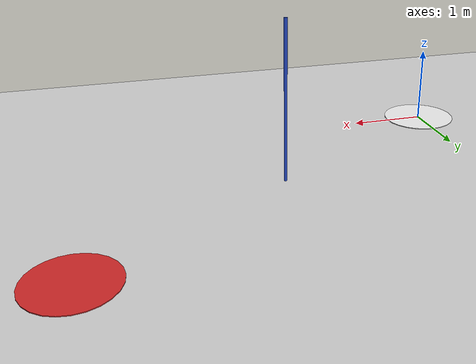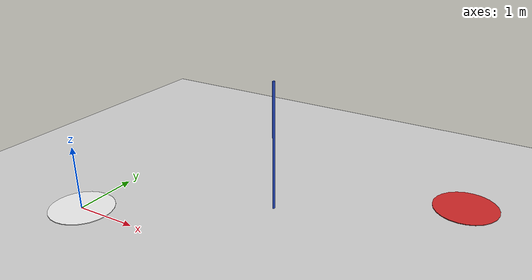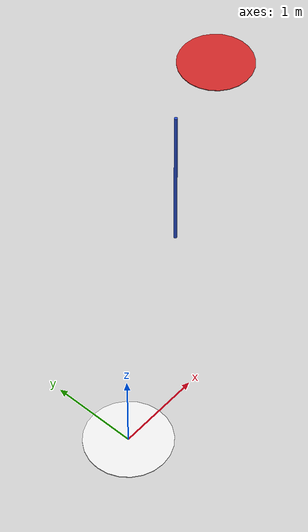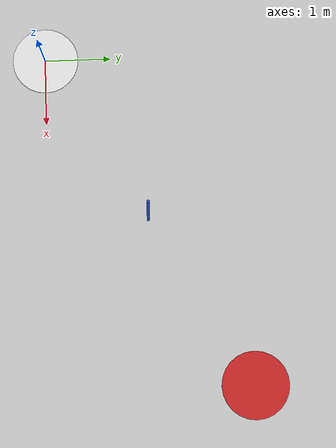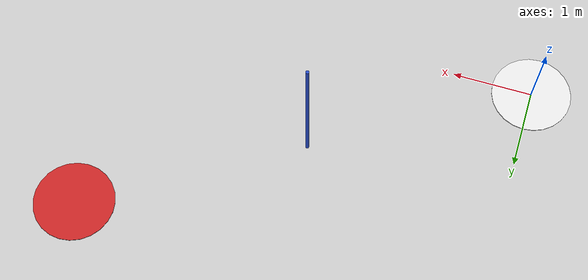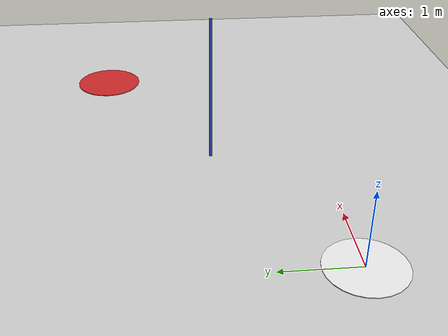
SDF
<?xml version="1.0" ?>
<sdf version="1.6">
  <world name="transport_world">

    <!-- 物理引擎设置 -->
    <physics type="ode">
      <max_step_size>0.001</max_step_size>
      <real_time_factor>1</real_time_factor>
      <real_time_update_rate>1000</real_time_update_rate>
    </physics>

    <!-- 光照 -->
    <include><uri>model://sun</uri></include>

    <!-- 地面 -->
    <include><uri>model://ground_plane</uri></include>

    <!-- 起飞点标记 -->
    <model name="takeoff_pad">
      <static>true</static>
      <pose>0 0 0.005 0 0 0</pose>
      <link name="link">
        <visual name="vis">
          <geometry><cylinder><radius>0.5</radius><length>0.01</length></cylinder></geometry>
          <material><script><name>Gazebo/White</name>
            <uri>file://media/materials/scripts/gazebo.material</uri></script></material>
        </visual>
      </link>
    </model>

    <!-- 目标降落点 -->
    <model name="delivery_pad">
      <static>true</static>
      <pose>5 3 0.005 0 0 0</pose>
      <link name="link">
        <visual name="vis">
          <geometry><cylinder><radius>0.5</radius><length>0.01</length></cylinder></geometry>
          <material><script><name>Gazebo/Red</name>
            <uri>file://media/materials/scripts/gazebo.material</uri></script></material>
        </visual>
      </link>
    </model>

    <!-- 航点标记柱 -->
    <model name="waypoint_marker">
      <static>true</static>
      <pose>2.5 1.5 1.0 0 0 0</pose>
      <link name="link">
        <visual name="vis">
          <geometry><cylinder><radius>0.02</radius><length>2.0</length></cylinder></geometry>
          <material><script><name>Gazebo/Blue</name>
            <uri>file://media/materials/scripts/gazebo.material</uri></script></material>
        </visual>
      </link>
    </model>

  </world>
</sdf>
